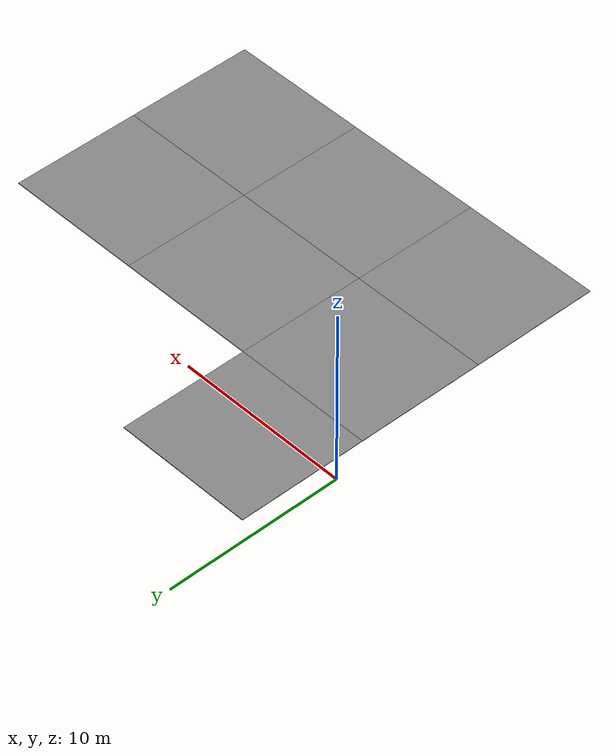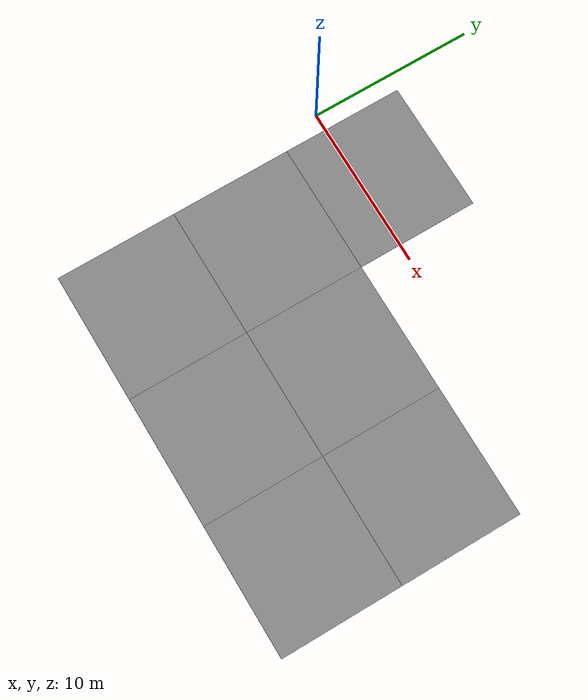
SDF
<sdf version="1.7">
 <world name="default">
  <model name="asphalt_tile_00_03">
   <static>1</static>
   <pose>5.000 -13.533 -0.020 0 -0 0</pose>
   <link name="link">
    <collision name="collision"><geometry><box><size>8.000 7.333 0.040</size></box></geometry></collision>
    <visual name="visual">
     <cast_shadows>0</cast_shadows>
     <geometry><box><size>8.000 7.333 0.040</size></box></geometry>
     <material>
      <ambient>0.5 0.5 0.5 1</ambient>
      <diffuse>0.5 0.5 0.5 1</diffuse>
      <specular>0.2 0.2 0.2 1</specular>
      <emissive>0 0 0 1</emissive>
      <pbr>
       <metal>
        <albedo_map>model://asphalt_plane/materials/textures/tarmac.png</albedo_map>
        <roughness>0.85</roughness>
        <metalness>0</metalness>
       </metal>
      </pbr>
     </material>
    </visual>
   </link>
  </model>
  <model name="asphalt_tile_00_04">
   <static>1</static>
   <pose>13.000 -13.533 -0.020 0 -0 0</pose>
   <link name="link">
    <collision name="collision"><geometry><box><size>8.000 7.333 0.040</size></box></geometry></collision>
    <visual name="visual">
     <cast_shadows>0</cast_shadows>
     <geometry><box><size>8.000 7.333 0.040</size></box></geometry>
     <material>
      <ambient>0.5 0.5 0.5 1</ambient>
      <diffuse>0.5 0.5 0.5 1</diffuse>
      <specular>0.2 0.2 0.2 1</specular>
      <emissive>0 0 0 1</emissive>
      <pbr>
       <metal>
        <albedo_map>model://asphalt_plane/materials/textures/tarmac.png</albedo_map>
        <roughness>0.85</roughness>
        <metalness>0</metalness>
       </metal>
      </pbr>
     </material>
    </visual>
   </link>
  </model>
  <model name="asphalt_tile_00_05">
   <static>1</static>
   <pose>21.000 -13.533 -0.020 0 -0 0</pose>
   <link name="link">
    <collision name="collision"><geometry><box><size>8.000 7.333 0.040</size></box></geometry></collision>
    <visual name="visual">
     <cast_shadows>0</cast_shadows>
     <geometry><box><size>8.000 7.333 0.040</size></box></geometry>
     <material>
      <ambient>0.5 0.5 0.5 1</ambient>
      <diffuse>0.5 0.5 0.5 1</diffuse>
      <specular>0.2 0.2 0.2 1</specular>
      <emissive>0 0 0 1</emissive>
      <pbr>
       <metal>
        <albedo_map>model://asphalt_plane/materials/textures/tarmac.png</albedo_map>
        <roughness>0.85</roughness>
        <metalness>0</metalness>
       </metal>
      </pbr>
     </material>
    </visual>
   </link>
  </model>
  <model name="asphalt_tile_01_03">
   <static>1</static>
   <pose>5.000 -6.200 -0.020 0 -0 0</pose>
   <link name="link">
    <collision name="collision"><geometry><box><size>8.000 7.333 0.040</size></box></geometry></collision>
    <visual name="visual">
     <cast_shadows>0</cast_shadows>
     <geometry><box><size>8.000 7.333 0.040</size></box></geometry>
     <material>
      <ambient>0.5 0.5 0.5 1</ambient>
      <diffuse>0.5 0.5 0.5 1</diffuse>
      <specular>0.2 0.2 0.2 1</specular>
      <emissive>0 0 0 1</emissive>
      <pbr>
       <metal>
        <albedo_map>model://asphalt_plane/materials/textures/tarmac.png</albedo_map>
        <roughness>0.85</roughness>
        <metalness>0</metalness>
       </metal>
      </pbr>
     </material>
    </visual>
   </link>
  </model>
  <model name="asphalt_tile_01_04">
   <static>1</static>
   <pose>13.000 -6.200 -0.020 0 -0 0</pose>
   <link name="link">
    <collision name="collision"><geometry><box><size>8.000 7.333 0.040</size></box></geometry></collision>
    <visual name="visual">
     <cast_shadows>0</cast_shadows>
     <geometry><box><size>8.000 7.333 0.040</size></box></geometry>
     <material>
      <ambient>0.5 0.5 0.5 1</ambient>
      <diffuse>0.5 0.5 0.5 1</diffuse>
      <specular>0.2 0.2 0.2 1</specular>
      <emissive>0 0 0 1</emissive>
      <pbr>
       <metal>
        <albedo_map>model://asphalt_plane/materials/textures/tarmac.png</albedo_map>
        <roughness>0.85</roughness>
        <metalness>0</metalness>
       </metal>
      </pbr>
     </material>
    </visual>
   </link>
  </model>
  <model name="asphalt_tile_01_05">
   <static>1</static>
   <pose>21.000 -6.200 -0.020 0 -0 0</pose>
   <link name="link">
    <collision name="collision"><geometry><box><size>8.000 7.333 0.040</size></box></geometry></collision>
    <visual name="visual">
     <cast_shadows>0</cast_shadows>
     <geometry><box><size>8.000 7.333 0.040</size></box></geometry>
     <material>
      <ambient>0.5 0.5 0.5 1</ambient>
      <diffuse>0.5 0.5 0.5 1</diffuse>
      <specular>0.2 0.2 0.2 1</specular>
      <emissive>0 0 0 1</emissive>
      <pbr>
       <metal>
        <albedo_map>model://asphalt_plane/materials/textures/tarmac.png</albedo_map>
        <roughness>0.85</roughness>
        <metalness>0</metalness>
       </metal>
      </pbr>
     </material>
    </visual>
   </link>
  </model>
  <model name="asphalt_tile_02_03">
   <static>1</static>
   <pose>5.000 1.133 -0.020 0 -0 0</pose>
   <link name="link">
    <collision name="collision"><geometry><box><size>8.000 7.333 0.040</size></box></geometry></collision>
    <visual name="visual">
     <cast_shadows>0</cast_shadows>
     <geometry><box><size>8.000 7.333 0.040</size></box></geometry>
     <material>
      <ambient>0.5 0.5 0.5 1</ambient>
      <diffuse>0.5 0.5 0.5 1</diffuse>
      <specular>0.2 0.2 0.2 1</specular>
      <emissive>0 0 0 1</emissive>
      <pbr>
       <metal>
        <albedo_map>model://asphalt_plane/materials/textures/tarmac.png</albedo_map>
        <roughness>0.85</roughness>
        <metalness>0</metalness>
       </metal>
      </pbr>
     </material>
    </visual>
   </link>
  </model>
 </world>
</sdf>
